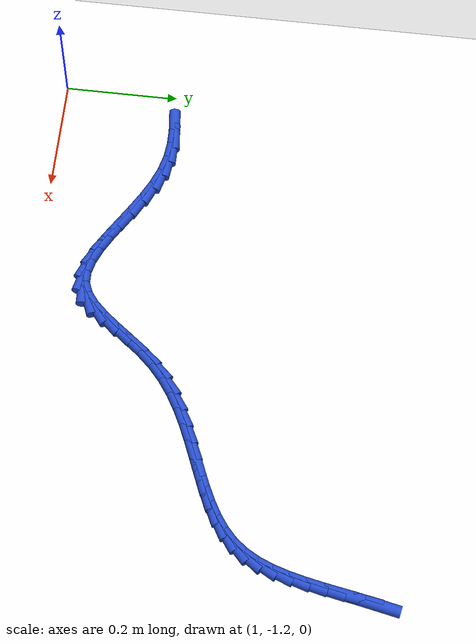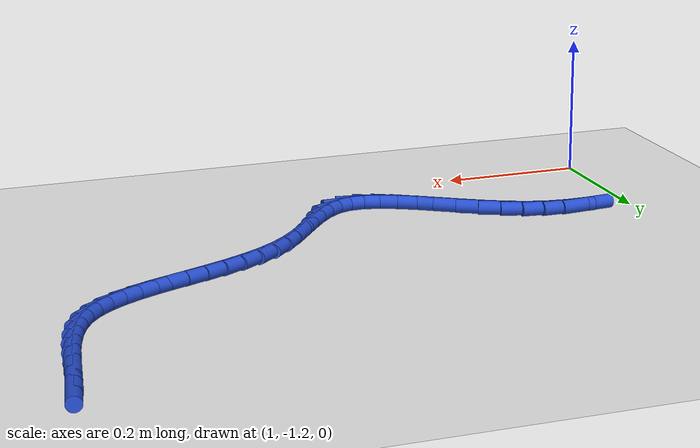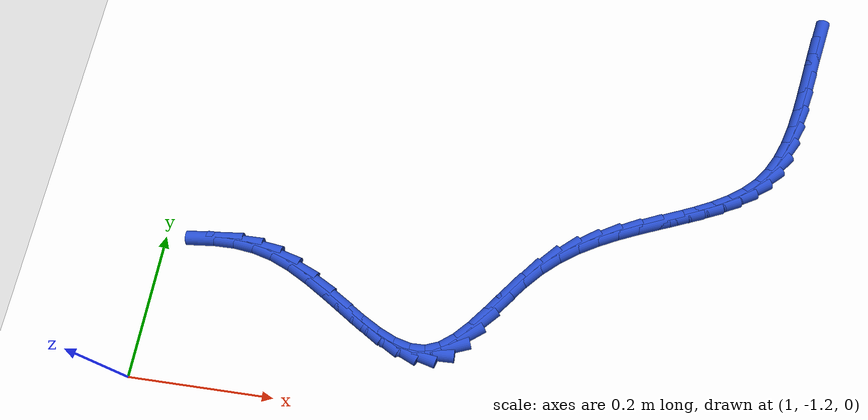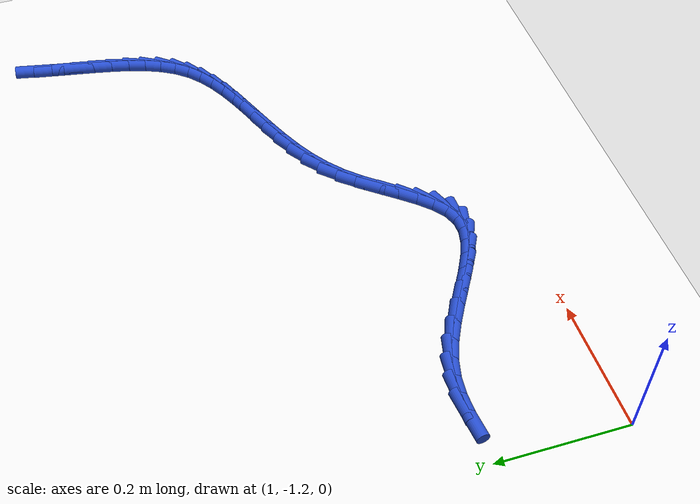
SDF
<sdf version="1.6">
 <world name="default">
  <model name="ground_plane">
   <static>1</static>
   <link name="link">
    <collision name="collision">
     <geometry><plane><normal>0 0 1</normal><size>100 100</size></plane></geometry>
     <surface><friction><ode><mu>100</mu><mu2>50</mu2></ode></friction></surface>
    </collision>
    <visual name="visual">
     <cast_shadows>0</cast_shadows>
     <geometry><plane><normal>0 0 1</normal><size>100 100</size></plane></geometry>
     <material>
      <script><uri>file://media/materials/scripts/gazebo.material</uri><name>Gazebo/WhiteGlow</name></script>
     </material>
    </visual>
   </link>
  </model>
  <model name="line">
   <link name="link_140">
    <pose>1.90175721498679 -0.5672798167557496 0.01 0 1.57 1.3709790255564973</pose>
    <collision name="collision">
     <geometry><cylinder><radius>0.01</radius><length>0.08</length></cylinder></geometry>
    </collision>
    <visual name="visual">
     <material>
      <script><name>Gazebo/Blue</name><uri>file://media/materials/scripts/gazebo.material</uri></script>
     </material>
     <geometry><cylinder><radius>0.01</radius><length>0.08</length></cylinder></geometry>
    </visual>
   </link>
   <link name="link_141">
    <pose>1.8958144535392787 -0.5966239123847147 0.01 0 1.57 1.389995215274292</pose>
    <collision name="collision">
     <geometry><cylinder><radius>0.01</radius><length>0.08</length></cylinder></geometry>
    </collision>
    <visual name="visual">
     <material>
      <script><name>Gazebo/Blue</name><uri>file://media/materials/scripts/gazebo.material</uri></script>
     </material>
     <geometry><cylinder><radius>0.01</radius><length>0.08</length></cylinder></geometry>
    </visual>
   </link>
   <link name="link_142">
    <pose>1.8903858736846484 -0.6263211792204679 0.01 0 1.57 1.3902497369089701</pose>
    <collision name="collision">
     <geometry><cylinder><radius>0.01</radius><length>0.08</length></cylinder></geometry>
    </collision>
    <visual name="visual">
     <material>
      <script><name>Gazebo/Blue</name><uri>file://media/materials/scripts/gazebo.material</uri></script>
     </material>
     <geometry><cylinder><radius>0.01</radius><length>0.08</length></cylinder></geometry>
    </visual>
   </link>
   <link name="link_143">
    <pose>1.8849822363570203 -0.6559245912225026 0.01 0 1.57 1.371388680516699</pose>
    <collision name="collision">
     <geometry><cylinder><radius>0.01</radius><length>0.08</length></cylinder></geometry>
    </collision>
    <visual name="visual">
     <material>
      <script><name>Gazebo/Blue</name><uri>file://media/materials/scripts/gazebo.material</uri></script>
     </material>
     <geometry><cylinder><radius>0.01</radius><length>0.08</length></cylinder></geometry>
    </visual>
   </link>
   <link name="link_144">
    <pose>1.8791096386631432 -0.684983418744902 0.01 0 1.57 1.3318774813819472</pose>
    <collision name="collision">
     <geometry><cylinder><radius>0.01</radius><length>0.08</length></cylinder></geometry>
    </collision>
    <visual name="visual">
     <material>
      <script><name>Gazebo/Blue</name><uri>file://media/materials/scripts/gazebo.material</uri></script>
     </material>
     <geometry><cylinder><radius>0.01</radius><length>0.08</length></cylinder></geometry>
    </visual>
   </link>
   <link name="link_145">
    <pose>1.872274177709768 -0.7130469321417502 0.01 0 1.57 1.2687924310526602</pose>
    <collision name="collision">
     <geometry><cylinder><radius>0.01</radius><length>0.08</length></cylinder></geometry>
    </collision>
    <visual name="visual">
     <material>
      <script><name>Gazebo/Blue</name><uri>file://media/materials/scripts/gazebo.material</uri></script>
     </material>
     <geometry><cylinder><radius>0.01</radius><length>0.08</length></cylinder></geometry>
    </visual>
   </link>
   <link name="link_146">
    <pose>1.8639819506036441 -0.7396644017671303 0.01 0 1.57 1.1779850860726926</pose>
    <collision name="collision">
     <geometry><cylinder><radius>0.01</radius><length>0.08</length></cylinder></geometry>
    </collision>
    <visual name="visual">
     <material>
      <script><name>Gazebo/Blue</name><uri>file://media/materials/scripts/gazebo.material</uri></script>
     </material>
     <geometry><cylinder><radius>0.01</radius><length>0.08</length></cylinder></geometry>
    </visual>
   </link>
   <link name="link_147">
    <pose>1.853739054451522 -0.7643850979751269 0.01 0 1.57 1.0549318782345982</pose>
    <collision name="collision">
     <geometry><cylinder><radius>0.01</radius><length>0.08</length></cylinder></geometry>
    </collision>
    <visual name="visual">
     <material>
      <script><name>Gazebo/Blue</name><uri>file://media/materials/scripts/gazebo.material</uri></script>
     </material>
     <geometry><cylinder><radius>0.01</radius><length>0.08</length></cylinder></geometry>
    </visual>
   </link>
   <link name="link_148">
    <pose>1.841051586360152 -0.7867582911198223 0.01 0 1.57 0.8986614799592305</pose>
    <collision name="collision">
     <geometry><cylinder><radius>0.01</radius><length>0.08</length></cylinder></geometry>
    </collision>
    <visual name="visual">
     <material>
      <script><name>Gazebo/Blue</name><uri>file://media/materials/scripts/gazebo.material</uri></script>
     </material>
     <geometry><cylinder><radius>0.01</radius><length>0.08</length></cylinder></geometry>
    </visual>
   </link>
   <link name="link_149">
    <pose>1.8254525959293146 -0.806361541778405 0.01 0 1.57 0.7401382764827078</pose>
    <collision name="collision">
     <geometry><cylinder><radius>0.01</radius><length>0.08</length></cylinder></geometry>
    </collision>
    <visual name="visual">
     <material>
      <script><name>Gazebo/Blue</name><uri>file://media/materials/scripts/gazebo.material</uri></script>
     </material>
     <geometry><cylinder><radius>0.01</radius><length>0.08</length></cylinder></geometry>
    </visual>
   </link>
   <link name="link_150">
    <pose>1.8069448617849388 -0.8232654535624385 0.01 0 1.57 0.610199837632151</pose>
    <collision name="collision">
     <geometry><cylinder><radius>0.01</radius><length>0.08</length></cylinder></geometry>
    </collision>
    <visual name="visual">
     <material>
      <script><name>Gazebo/Blue</name><uri>file://media/materials/scripts/gazebo.material</uri></script>
     </material>
     <geometry><cylinder><radius>0.01</radius><length>0.08</length></cylinder></geometry>
    </visual>
   </link>
   <link name="link_151">
    <pose>1.7859300718950675 -0.8379593384483714 0.01 0 1.57 0.5120115481285573</pose>
    <collision name="collision">
     <geometry><cylinder><radius>0.01</radius><length>0.08</length></cylinder></geometry>
    </collision>
    <visual name="visual">
     <material>
      <script><name>Gazebo/Blue</name><uri>file://media/materials/scripts/gazebo.material</uri></script>
     </material>
     <geometry><cylinder><radius>0.01</radius><length>0.08</length></cylinder></geometry>
    </visual>
   </link>
   <link name="link_152">
    <pose>1.7628225840986012 -0.8509458071257956 0.01 0 1.57 0.44372464773074755</pose>
    <collision name="collision">
     <geometry><cylinder><radius>0.01</radius><length>0.08</length></cylinder></geometry>
    </collision>
    <visual name="visual">
     <material>
      <script><name>Gazebo/Blue</name><uri>file://media/materials/scripts/gazebo.material</uri></script>
     </material>
     <geometry><cylinder><radius>0.01</radius><length>0.08</length></cylinder></geometry>
    </visual>
   </link>
   <link name="link_153">
    <pose>1.7380367562344432 -0.8627274702843026 0.01 0 1.57 0.4021404595827461</pose>
    <collision name="collision">
     <geometry><cylinder><radius>0.01</radius><length>0.08</length></cylinder></geometry>
    </collision>
    <visual name="visual">
     <material>
      <script><name>Gazebo/Blue</name><uri>file://media/materials/scripts/gazebo.material</uri></script>
     </material>
     <geometry><cylinder><radius>0.01</radius><length>0.08</length></cylinder></geometry>
    </visual>
   </link>
   <link name="link_154">
    <pose>1.711986946141496 -0.8738069386134852 0.01 0 1.57 0.38434972014437147</pose>
    <collision name="collision">
     <geometry><cylinder><radius>0.01</radius><length>0.08</length></cylinder></geometry>
    </collision>
    <visual name="visual">
     <material>
      <script><name>Gazebo/Blue</name><uri>file://media/materials/scripts/gazebo.material</uri></script>
     </material>
     <geometry><cylinder><radius>0.01</radius><length>0.08</length></cylinder></geometry>
    </visual>
   </link>
   <link name="link_155">
    <pose>1.6850875116586608 -0.8846868228029349 0.01 0 1.57 0.3883354230153913</pose>
    <collision name="collision">
     <geometry><cylinder><radius>0.01</radius><length>0.08</length></cylinder></geometry>
    </collision>
    <visual name="visual">
     <material>
      <script><name>Gazebo/Blue</name><uri>file://media/materials/scripts/gazebo.material</uri></script>
     </material>
     <geometry><cylinder><radius>0.01</radius><length>0.08</length></cylinder></geometry>
    </visual>
   </link>
   <link name="link_156">
    <pose>1.6577528106248416 -0.8958697335422439 0.01 0 1.57 0.4130383046600406</pose>
    <collision name="collision">
     <geometry><cylinder><radius>0.01</radius><length>0.08</length></cylinder></geometry>
    </collision>
    <visual name="visual">
     <material>
      <script><name>Gazebo/Blue</name><uri>file://media/materials/scripts/gazebo.material</uri></script>
     </material>
     <geometry><cylinder><radius>0.01</radius><length>0.08</length></cylinder></geometry>
    </visual>
   </link>
   <link name="link_157">
    <pose>1.6303972008789398 -0.9078582815210036 0.01 0 1.57 0.4581647321041046</pose>
    <collision name="collision">
     <geometry><cylinder><radius>0.01</radius><length>0.08</length></cylinder></geometry>
    </collision>
    <visual name="visual">
     <material>
      <script><name>Gazebo/Blue</name><uri>file://media/materials/scripts/gazebo.material</uri></script>
     </material>
     <geometry><cylinder><radius>0.01</radius><length>0.08</length></cylinder></geometry>
    </visual>
   </link>
   <link name="link_158">
    <pose>1.6034350402598578 -0.921155077428807 0.01 0 1.57 0.5238118516878917</pose>
    <collision name="collision">
     <geometry><cylinder><radius>0.01</radius><length>0.08</length></cylinder></geometry>
    </collision>
    <visual name="visual">
     <material>
      <script><name>Gazebo/Blue</name><uri>file://media/materials/scripts/gazebo.material</uri></script>
     </material>
     <geometry><cylinder><radius>0.01</radius><length>0.08</length></cylinder></geometry>
    </visual>
   </link>
   <link name="link_159">
    <pose>1.5772806866064977 -0.9362627319552452 0.01 0 1.57 0.6098799931915804</pose>
    <collision name="collision">
     <geometry><cylinder><radius>0.01</radius><length>0.08</length></cylinder></geometry>
    </collision>
    <visual name="visual">
     <material>
      <script><name>Gazebo/Blue</name><uri>file://media/materials/scripts/gazebo.material</uri></script>
     </material>
     <geometry><cylinder><radius>0.01</radius><length>0.08</length></cylinder></geometry>
    </visual>
   </link>
   <link name="link_160">
    <pose>1.5523484977577628 -0.953683855789911 0.01 0 1.57 0.715256635026455</pose>
    <collision name="collision">
     <geometry><cylinder><radius>0.01</radius><length>0.08</length></cylinder></geometry>
    </collision>
    <visual name="visual">
     <material>
      <script><name>Gazebo/Blue</name><uri>file://media/materials/scripts/gazebo.material</uri></script>
     </material>
     <geometry><cylinder><radius>0.01</radius><length>0.08</length></cylinder></geometry>
    </visual>
   </link>
   <link name="link_161">
    <pose>1.529052826503953 -0.9739210480783546 0.01 0 1.57 0.8244939589537659</pose>
    <collision name="collision">
     <geometry><cylinder><radius>0.01</radius><length>0.08</length></cylinder></geometry>
    </collision>
    <visual name="visual">
     <material>
      <script><name>Gazebo/Blue</name><uri>file://media/materials/scripts/gazebo.material</uri></script>
     </material>
     <geometry><cylinder><radius>0.01</radius><length>0.08</length></cylinder></geometry>
    </visual>
   </link>
   <link name="link_162">
    <pose>1.5076354037804953 -0.9970821939108239 0.01 0 1.57 0.8931282766878511</pose>
    <collision name="collision">
     <geometry><cylinder><radius>0.01</radius><length>0.08</length></cylinder></geometry>
    </collision>
    <visual name="visual">
     <material>
      <script><name>Gazebo/Blue</name><uri>file://media/materials/scripts/gazebo.material</uri></script>
     </material>
     <geometry><cylinder><radius>0.01</radius><length>0.08</length></cylinder></geometry>
    </visual>
   </link>
   <link name="link_163">
    <pose>1.4877102106082514 -1.0218397766164402 0.01 0 1.57 0.9160832860609591</pose>
    <collision name="collision">
     <geometry><cylinder><radius>0.01</radius><length>0.08</length></cylinder></geometry>
    </collision>
    <visual name="visual">
     <material>
      <script><name>Gazebo/Blue</name><uri>file://media/materials/scripts/gazebo.material</uri></script>
     </material>
     <geometry><cylinder><radius>0.01</radius><length>0.08</length></cylinder></geometry>
    </visual>
   </link>
   <link name="link_164">
    <pose>1.468748573291342 -1.046540087792734 0.01 0 1.57 0.8924773112233718</pose>
    <collision name="collision">
     <geometry><cylinder><radius>0.01</radius><length>0.08</length></cylinder></geometry>
    </collision>
    <visual name="visual">
     <material>
      <script><name>Gazebo/Blue</name><uri>file://media/materials/scripts/gazebo.material</uri></script>
     </material>
     <geometry><cylinder><radius>0.01</radius><length>0.08</length></cylinder></geometry>
    </visual>
   </link>
   <link name="link_165">
    <pose>1.4502218181338884 -1.0695294190372353 0.01 0 1.57 0.8116463169628406</pose>
    <collision name="collision">
     <geometry><cylinder><radius>0.01</radius><length>0.08</length></cylinder></geometry>
    </collision>
    <visual name="visual">
     <material>
      <script><name>Gazebo/Blue</name><uri>file://media/materials/scripts/gazebo.material</uri></script>
     </material>
     <geometry><cylinder><radius>0.01</radius><length>0.08</length></cylinder></geometry>
    </visual>
   </link>
   <link name="link_166">
    <pose>1.431601271440013 -1.089154061947475 0.01 0 1.57 0.6492626510141286</pose>
    <collision name="collision">
     <geometry><cylinder><radius>0.01</radius><length>0.08</length></cylinder></geometry>
    </collision>
    <visual name="visual">
     <material>
      <script><name>Gazebo/Blue</name><uri>file://media/materials/scripts/gazebo.material</uri></script>
     </material>
     <geometry><cylinder><radius>0.01</radius><length>0.08</length></cylinder></geometry>
    </visual>
   </link>
   <link name="link_167">
    <pose>1.412358259513837 -1.1037603081209828 0.01 0 1.57 0.37145459949753856</pose>
    <collision name="collision">
     <geometry><cylinder><radius>0.01</radius><length>0.08</length></cylinder></geometry>
    </collision>
    <visual name="visual">
     <material>
      <script><name>Gazebo/Blue</name><uri>file://media/materials/scripts/gazebo.material</uri></script>
     </material>
     <geometry><cylinder><radius>0.01</radius><length>0.08</length></cylinder></geometry>
    </visual>
   </link>
   <link name="link_168">
    <pose>1.391966221146458 -1.1117037724554804 0.01 0 1.57 0.02780828912565577</pose>
    <collision name="collision">
     <geometry><cylinder><radius>0.01</radius><length>0.08</length></cylinder></geometry>
    </collision>
    <visual name="visual">
     <material>
      <script><name>Gazebo/Blue</name><uri>file://media/materials/scripts/gazebo.material</uri></script>
     </material>
     <geometry><cylinder><radius>0.01</radius><length>0.08</length></cylinder></geometry>
    </visual>
   </link>
   <link name="link_169">
    <pose>1.3701186967078505 -1.1123114713845437 0.01 0 1.57 -0.23657938678902102</pose>
    <collision name="collision">
     <geometry><cylinder><radius>0.01</radius><length>0.08</length></cylinder></geometry>
    </collision>
    <visual name="visual">
     <material>
      <script><name>Gazebo/Blue</name><uri>file://media/materials/scripts/gazebo.material</uri></script>
     </material>
     <geometry><cylinder><radius>0.01</radius><length>0.08</length></cylinder></geometry>
    </visual>
   </link>
   <link name="link_170">
    <pose>1.3469188160590126 -1.1067181133296011 0.01 0 1.57 -0.40501534863970784</pose>
    <collision name="collision">
     <geometry><cylinder><radius>0.01</radius><length>0.08</length></cylinder></geometry>
    </collision>
    <visual name="visual">
     <material>
      <script><name>Gazebo/Blue</name><uri>file://media/materials/scripts/gazebo.material</uri></script>
     </material>
     <geometry><cylinder><radius>0.01</radius><length>0.08</length></cylinder></geometry>
    </visual>
   </link>
   <link name="link_171">
    <pose>1.3225143652657743 -1.0962554934671007 0.01 0 1.57 -0.5027348711530947</pose>
    <collision name="collision">
     <geometry><cylinder><radius>0.01</radius><length>0.08</length></cylinder></geometry>
    </collision>
    <visual name="visual">
     <material>
      <script><name>Gazebo/Blue</name><uri>file://media/materials/scripts/gazebo.material</uri></script>
     </material>
     <geometry><cylinder><radius>0.01</radius><length>0.08</length></cylinder></geometry>
    </visual>
   </link>
   <link name="link_172">
    <pose>1.2970531303939608 -1.0822554069734882 0.01 0 1.57 -0.5510475019678236</pose>
    <collision name="collision">
     <geometry><cylinder><radius>0.01</radius><length>0.08</length></cylinder></geometry>
    </collision>
    <visual name="visual">
     <material>
      <script><name>Gazebo/Blue</name><uri>file://media/materials/scripts/gazebo.material</uri></script>
     </material>
     <geometry><cylinder><radius>0.01</radius><length>0.08</length></cylinder></geometry>
    </visual>
   </link>
   <link name="link_173">
    <pose>1.2706828975094002 -1.0660496490252107 0.01 0 1.57 -0.5618390148043655</pose>
    <collision name="collision">
     <geometry><cylinder><radius>0.01</radius><length>0.08</length></cylinder></geometry>
    </collision>
    <visual name="visual">
     <material>
      <script><name>Gazebo/Blue</name><uri>file://media/materials/scripts/gazebo.material</uri></script>
     </material>
     <geometry><cylinder><radius>0.01</radius><length>0.08</length></cylinder></geometry>
    </visual>
   </link>
   <link name="link_174">
    <pose>1.2435514526779197 -1.0489700147987155 0.01 0 1.57 -0.5397511943578778</pose>
    <collision name="collision">
     <geometry><cylinder><radius>0.01</radius><length>0.08</length></cylinder></geometry>
    </collision>
    <visual name="visual">
     <material>
      <script><name>Gazebo/Blue</name><uri>file://media/materials/scripts/gazebo.material</uri></script>
     </material>
     <geometry><cylinder><radius>0.01</radius><length>0.08</length></cylinder></geometry>
    </visual>
   </link>
   <link name="link_175">
    <pose>1.2158065819653463 -1.0323482994704487 0.01 0 1.57 -0.4840438023619661</pose>
    <collision name="collision">
     <geometry><cylinder><radius>0.01</radius><length>0.08</length></cylinder></geometry>
    </collision>
    <visual name="visual">
     <material>
      <script><name>Gazebo/Blue</name><uri>file://media/materials/scripts/gazebo.material</uri></script>
     </material>
     <geometry><cylinder><radius>0.01</radius><length>0.08</length></cylinder></geometry>
    </visual>
   </link>
   <link name="link_176">
    <pose>1.1875960714375071 -1.0175162982168573 0.01 0 1.57 -0.38951315625497546</pose>
    <collision name="collision">
     <geometry><cylinder><radius>0.01</radius><length>0.08</length></cylinder></geometry>
    </collision>
    <visual name="visual">
     <material>
      <script><name>Gazebo/Blue</name><uri>file://media/materials/scripts/gazebo.material</uri></script>
     </material>
     <geometry><cylinder><radius>0.01</radius><length>0.08</length></cylinder></geometry>
    </visual>
   </link>
   <link name="link_177">
    <pose>1.159067707160229 -1.0058058062143878 0.01 0 1.57 -0.2519917955369203</pose>
    <collision name="collision">
     <geometry><cylinder><radius>0.01</radius><length>0.08</length></cylinder></geometry>
    </collision>
    <visual name="visual">
     <material>
      <script><name>Gazebo/Blue</name><uri>file://media/materials/scripts/gazebo.material</uri></script>
     </material>
     <geometry><cylinder><radius>0.01</radius><length>0.08</length></cylinder></geometry>
    </visual>
   </link>
   <link name="link_178">
    <pose>1.1303644182144077 -0.9984157235922226 0.01 0 1.57 -0.10947524831589553</pose>
    <collision name="collision">
     <geometry><cylinder><radius>0.01</radius><length>0.08</length></cylinder></geometry>
    </collision>
    <visual name="visual">
     <material>
      <script><name>Gazebo/Blue</name><uri>file://media/materials/scripts/gazebo.material</uri></script>
     </material>
     <geometry><cylinder><radius>0.01</radius><length>0.08</length></cylinder></geometry>
    </visual>
   </link>
   <link name="link_179">
    <pose>1.1015818831902477 -0.9952520998160281 0.01 0 1.57 0.008359898171013541</pose>
    <collision name="collision">
     <geometry><cylinder><radius>0.01</radius><length>0.08</length></cylinder></geometry>
    </collision>
    <visual name="visual">
     <material>
      <script><name>Gazebo/Blue</name><uri>file://media/materials/scripts/gazebo.material</uri></script>
     </material>
     <geometry><cylinder><radius>0.01</radius><length>0.08</length></cylinder></geometry>
    </visual>
   </link>
   <link name="link_180">
    <pose>1.072789167693481 -0.9954928095932409 0.01 0 1.57 0.09764729136541365</pose>
    <collision name="collision">
     <geometry><cylinder><radius>0.01</radius><length>0.08</length></cylinder></geometry>
    </collision>
    <visual name="visual">
     <material>
      <script><name>Gazebo/Blue</name><uri>file://media/materials/scripts/gazebo.material</uri></script>
     </material>
     <geometry><cylinder><radius>0.01</radius><length>0.08</length></cylinder></geometry>
    </visual>
   </link>
  </model>
 </world>
</sdf>
